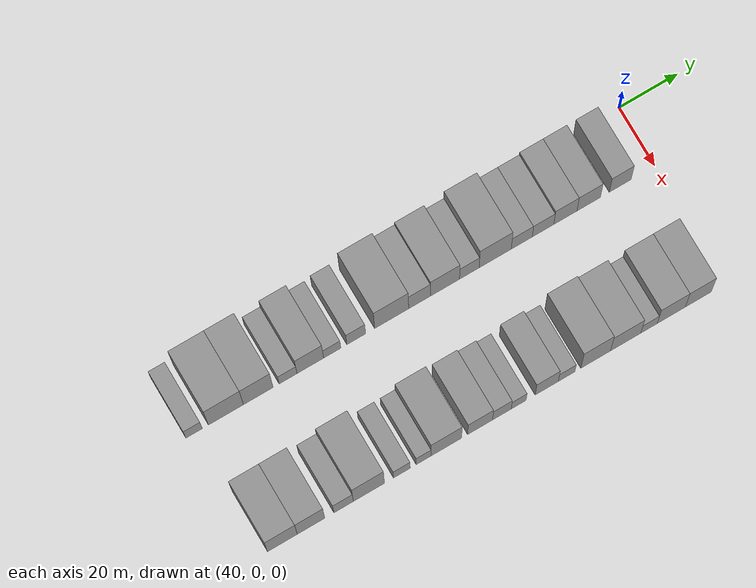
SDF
<sdf version="1.6">
 <world name="default">
  <model name="building_17">
   <static>1</static>
   <pose>50.0000 -153.6714 0 0.000000 0.000000 0.000000</pose>
   <link name="link">
    <pose>0 0 6.00 0 0 0</pose>
    <collision name="collision"><geometry><box><size>20.0000 5.4120 12.0000</size></box></geometry></collision>
    <visual name="visual">
     <cast_shadows>0</cast_shadows>
     <geometry><box><size>20.0000 5.4120 12.0000</size></box></geometry>
     <material>
      <script>
       <uri>model://grey_wall/materials/scripts</uri>
       <uri>model://grey_wall/materials/textures</uri>
       <name>vrc/grey_wall</name>
      </script>
     </material>
    </visual>
   </link>
  </model>
  <model name="building_18">
   <static>1</static>
   <pose>50.0000 -143.1797 0 0.000000 0.000000 0.000000</pose>
   <link name="link">
    <pose>0 0 12.00 0 0 0</pose>
    <collision name="collision"><geometry><box><size>20.0000 11.5714 24.0000</size></box></geometry></collision>
    <visual name="visual">
     <cast_shadows>0</cast_shadows>
     <geometry><box><size>20.0000 11.5714 24.0000</size></box></geometry>
     <material>
      <script>
       <uri>model://grey_wall/materials/scripts</uri>
       <uri>model://grey_wall/materials/textures</uri>
       <name>vrc/grey_wall</name>
      </script>
     </material>
    </visual>
   </link>
  </model>
  <model name="building_19">
   <static>1</static>
   <pose>50.0000 -132.5070 0 0.000000 0.000000 0.000000</pose>
   <link name="link">
    <pose>0 0 12.00 0 0 0</pose>
    <collision name="collision"><geometry><box><size>20.0000 9.7740 24.0000</size></box></geometry></collision>
    <visual name="visual">
     <cast_shadows>0</cast_shadows>
     <geometry><box><size>20.0000 9.7740 24.0000</size></box></geometry>
     <material>
      <script>
       <uri>model://grey_wall/materials/scripts</uri>
       <uri>model://grey_wall/materials/textures</uri>
       <name>vrc/grey_wall</name>
      </script>
     </material>
    </visual>
   </link>
  </model>
  <model name="building_20">
   <static>1</static>
   <pose>50.0000 -122.6663 0 0.000000 0.000000 0.000000</pose>
   <link name="link">
    <pose>0 0 6.00 0 0 0</pose>
    <collision name="collision"><geometry><box><size>20.0000 5.9075 12.0000</size></box></geometry></collision>
    <visual name="visual">
     <cast_shadows>0</cast_shadows>
     <geometry><box><size>20.0000 5.9075 12.0000</size></box></geometry>
     <material>
      <script>
       <uri>model://grey_wall/materials/scripts</uri>
       <uri>model://grey_wall/materials/textures</uri>
       <name>vrc/grey_wall</name>
      </script>
     </material>
    </visual>
   </link>
  </model>
  <model name="building_21">
   <static>1</static>
   <pose>50.0000 -115.2977 0 0.000000 0.000000 0.000000</pose>
   <link name="link">
    <pose>0 0 10.50 0 0 0</pose>
    <collision name="collision"><geometry><box><size>20.0000 8.8297 21.0000</size></box></geometry></collision>
    <visual name="visual">
     <cast_shadows>0</cast_shadows>
     <geometry><box><size>20.0000 8.8297 21.0000</size></box></geometry>
     <material>
      <script>
       <uri>model://grey_wall/materials/scripts</uri>
       <uri>model://grey_wall/materials/textures</uri>
       <name>vrc/grey_wall</name>
      </script>
     </material>
    </visual>
   </link>
  </model>
  <model name="building_22">
   <static>1</static>
   <pose>50.0000 -108.0368 0 0.000000 0.000000 0.000000</pose>
   <link name="link">
    <pose>0 0 6.00 0 0 0</pose>
    <collision name="collision"><geometry><box><size>20.0000 5.6920 12.0000</size></box></geometry></collision>
    <visual name="visual">
     <cast_shadows>0</cast_shadows>
     <geometry><box><size>20.0000 5.6920 12.0000</size></box></geometry>
     <material>
      <script>
       <uri>model://grey_wall/materials/scripts</uri>
       <uri>model://grey_wall/materials/textures</uri>
       <name>vrc/grey_wall</name>
      </script>
     </material>
    </visual>
   </link>
  </model>
  <model name="building_23">
   <static>1</static>
   <pose>50.0000 -100.0813 0 0.000000 0.000000 0.000000</pose>
   <link name="link">
    <pose>0 0 7.50 0 0 0</pose>
    <collision name="collision"><geometry><box><size>20.0000 6.2189 15.0000</size></box></geometry></collision>
    <visual name="visual">
     <cast_shadows>0</cast_shadows>
     <geometry><box><size>20.0000 6.2189 15.0000</size></box></geometry>
     <material>
      <script>
       <uri>model://grey_wall/materials/scripts</uri>
       <uri>model://grey_wall/materials/textures</uri>
       <name>vrc/grey_wall</name>
      </script>
     </material>
    </visual>
   </link>
  </model>
  <model name="building_24">
   <static>1</static>
   <pose>50.0000 -88.3045 0 0.000000 0.000000 0.000000</pose>
   <link name="link">
    <pose>0 0 12.00 0 0 0</pose>
    <collision name="collision"><geometry><box><size>20.0000 11.3347 24.0000</size></box></geometry></collision>
    <visual name="visual">
     <cast_shadows>0</cast_shadows>
     <geometry><box><size>20.0000 11.3347 24.0000</size></box></geometry>
     <material>
      <script>
       <uri>model://grey_wall/materials/scripts</uri>
       <uri>model://grey_wall/materials/textures</uri>
       <name>vrc/grey_wall</name>
      </script>
     </material>
    </visual>
   </link>
  </model>
  <model name="building_25">
   <static>1</static>
   <pose>50.0000 -79.0158 0 0.000000 0.000000 0.000000</pose>
   <link name="link">
    <pose>0 0 9.00 0 0 0</pose>
    <collision name="collision"><geometry><box><size>20.0000 7.2427 18.0000</size></box></geometry></collision>
    <visual name="visual">
     <cast_shadows>0</cast_shadows>
     <geometry><box><size>20.0000 7.2427 18.0000</size></box></geometry>
     <material>
      <script>
       <uri>model://grey_wall/materials/scripts</uri>
       <uri>model://grey_wall/materials/textures</uri>
       <name>vrc/grey_wall</name>
      </script>
     </material>
    </visual>
   </link>
  </model>
  <model name="building_26">
   <static>1</static>
   <pose>50.0000 -70.5292 0 0.000000 0.000000 0.000000</pose>
   <link name="link">
    <pose>0 0 10.50 0 0 0</pose>
    <collision name="collision"><geometry><box><size>20.0000 9.7304 21.0000</size></box></geometry></collision>
    <visual name="visual">
     <cast_shadows>0</cast_shadows>
     <geometry><box><size>20.0000 9.7304 21.0000</size></box></geometry>
     <material>
      <script>
       <uri>model://grey_wall/materials/scripts</uri>
       <uri>model://grey_wall/materials/textures</uri>
       <name>vrc/grey_wall</name>
      </script>
     </material>
    </visual>
   </link>
  </model>
  <model name="building_27">
   <static>1</static>
   <pose>50.0000 -62.3960 0 0.000000 0.000000 0.000000</pose>
   <link name="link">
    <pose>0 0 7.50 0 0 0</pose>
    <collision name="collision"><geometry><box><size>20.0000 6.5360 15.0000</size></box></geometry></collision>
    <visual name="visual">
     <cast_shadows>0</cast_shadows>
     <geometry><box><size>20.0000 6.5360 15.0000</size></box></geometry>
     <material>
      <script>
       <uri>model://grey_wall/materials/scripts</uri>
       <uri>model://grey_wall/materials/textures</uri>
       <name>vrc/grey_wall</name>
      </script>
     </material>
    </visual>
   </link>
  </model>
  <model name="building_28">
   <static>1</static>
   <pose>50.0000 -53.7417 0 0.000000 0.000000 0.000000</pose>
   <link name="link">
    <pose>0 0 12.00 0 0 0</pose>
    <collision name="collision"><geometry><box><size>20.0000 10.7727 24.0000</size></box></geometry></collision>
    <visual name="visual">
     <cast_shadows>0</cast_shadows>
     <geometry><box><size>20.0000 10.7727 24.0000</size></box></geometry>
     <material>
      <script>
       <uri>model://grey_wall/materials/scripts</uri>
       <uri>model://grey_wall/materials/textures</uri>
       <name>vrc/grey_wall</name>
      </script>
     </material>
    </visual>
   </link>
  </model>
  <model name="building_29">
   <static>1</static>
   <pose>50.0000 -44.8330 0 0.000000 0.000000 0.000000</pose>
   <link name="link">
    <pose>0 0 7.50 0 0 0</pose>
    <collision name="collision"><geometry><box><size>20.0000 7.0446 15.0000</size></box></geometry></collision>
    <visual name="visual">
     <cast_shadows>0</cast_shadows>
     <geometry><box><size>20.0000 7.0446 15.0000</size></box></geometry>
     <material>
      <script>
       <uri>model://grey_wall/materials/scripts</uri>
       <uri>model://grey_wall/materials/textures</uri>
       <name>vrc/grey_wall</name>
      </script>
     </material>
    </visual>
   </link>
  </model>
  <model name="building_30">
   <static>1</static>
   <pose>50.0000 -37.7096 0 0.000000 0.000000 0.000000</pose>
   <link name="link">
    <pose>0 0 7.50 0 0 0</pose>
    <collision name="collision"><geometry><box><size>20.0000 7.2022 15.0000</size></box></geometry></collision>
    <visual name="visual">
     <cast_shadows>0</cast_shadows>
     <geometry><box><size>20.0000 7.2022 15.0000</size></box></geometry>
     <material>
      <script>
       <uri>model://grey_wall/materials/scripts</uri>
       <uri>model://grey_wall/materials/textures</uri>
       <name>vrc/grey_wall</name>
      </script>
     </material>
    </visual>
   </link>
  </model>
  <model name="building_31">
   <static>1</static>
   <pose>50.0000 -30.2062 0 0.000000 0.000000 0.000000</pose>
   <link name="link">
    <pose>0 0 9.00 0 0 0</pose>
    <collision name="collision"><geometry><box><size>20.0000 7.8048 18.0000</size></box></geometry></collision>
    <visual name="visual">
     <cast_shadows>0</cast_shadows>
     <geometry><box><size>20.0000 7.8048 18.0000</size></box></geometry>
     <material>
      <script>
       <uri>model://grey_wall/materials/scripts</uri>
       <uri>model://grey_wall/materials/textures</uri>
       <name>vrc/grey_wall</name>
      </script>
     </material>
    </visual>
   </link>
  </model>
  <model name="building_32">
   <static>1</static>
   <pose>50.0000 -22.3476 0 0.000000 0.000000 0.000000</pose>
   <link name="link">
    <pose>0 0 9.00 0 0 0</pose>
    <collision name="collision"><geometry><box><size>20.0000 7.9123 18.0000</size></box></geometry></collision>
    <visual name="visual">
     <cast_shadows>0</cast_shadows>
     <geometry><box><size>20.0000 7.9123 18.0000</size></box></geometry>
     <material>
      <script>
       <uri>model://grey_wall/materials/scripts</uri>
       <uri>model://grey_wall/materials/textures</uri>
       <name>vrc/grey_wall</name>
      </script>
     </material>
    </visual>
   </link>
  </model>
  <model name="building_33">
   <static>1</static>
   <pose>50.0000 -11.7090 0 0.000000 0.000000 0.000000</pose>
   <link name="link">
    <pose>0 0 9.00 0 0 0</pose>
    <collision name="collision"><geometry><box><size>20.0000 7.3649 18.0000</size></box></geometry></collision>
    <visual name="visual">
     <cast_shadows>0</cast_shadows>
     <geometry><box><size>20.0000 7.3649 18.0000</size></box></geometry>
     <material>
      <script>
       <uri>model://grey_wall/materials/scripts</uri>
       <uri>model://grey_wall/materials/textures</uri>
       <name>vrc/grey_wall</name>
      </script>
     </material>
    </visual>
   </link>
  </model>
  <model name="building_87">
   <static>1</static>
   <pose>90.0000 -147.7793 0 0.000000 0.000000 0.000000</pose>
   <link name="link">
    <pose>0 0 10.50 0 0 0</pose>
    <collision name="collision"><geometry><box><size>20.0000 9.7521 21.0000</size></box></geometry></collision>
    <visual name="visual">
     <cast_shadows>0</cast_shadows>
     <geometry><box><size>20.0000 9.7521 21.0000</size></box></geometry>
     <material>
      <script>
       <uri>model://grey_wall/materials/scripts</uri>
       <uri>model://grey_wall/materials/textures</uri>
       <name>vrc/grey_wall</name>
      </script>
     </material>
    </visual>
   </link>
  </model>
  <model name="building_88">
   <static>1</static>
   <pose>90.0000 -138.3805 0 0.000000 0.000000 0.000000</pose>
   <link name="link">
    <pose>0 0 10.50 0 0 0</pose>
    <collision name="collision"><geometry><box><size>20.0000 9.0456 21.0000</size></box></geometry></collision>
    <visual name="visual">
     <cast_shadows>0</cast_shadows>
     <geometry><box><size>20.0000 9.0456 21.0000</size></box></geometry>
     <material>
      <script>
       <uri>model://grey_wall/materials/scripts</uri>
       <uri>model://grey_wall/materials/textures</uri>
       <name>vrc/grey_wall</name>
      </script>
     </material>
    </visual>
   </link>
  </model>
  <model name="building_89">
   <static>1</static>
   <pose>90.0000 -127.6646 0 0.000000 0.000000 0.000000</pose>
   <link name="link">
    <pose>0 0 7.50 0 0 0</pose>
    <collision name="collision"><geometry><box><size>20.0000 6.3862 15.0000</size></box></geometry></collision>
    <visual name="visual">
     <cast_shadows>0</cast_shadows>
     <geometry><box><size>20.0000 6.3862 15.0000</size></box></geometry>
     <material>
      <script>
       <uri>model://grey_wall/materials/scripts</uri>
       <uri>model://grey_wall/materials/textures</uri>
       <name>vrc/grey_wall</name>
      </script>
     </material>
    </visual>
   </link>
  </model>
  <model name="building_90">
   <static>1</static>
   <pose>90.0000 -119.3427 0 0.000000 0.000000 0.000000</pose>
   <link name="link">
    <pose>0 0 12.00 0 0 0</pose>
    <collision name="collision"><geometry><box><size>20.0000 10.2575 24.0000</size></box></geometry></collision>
    <visual name="visual">
     <cast_shadows>0</cast_shadows>
     <geometry><box><size>20.0000 10.2575 24.0000</size></box></geometry>
     <material>
      <script>
       <uri>model://grey_wall/materials/scripts</uri>
       <uri>model://grey_wall/materials/textures</uri>
       <name>vrc/grey_wall</name>
      </script>
     </material>
    </visual>
   </link>
  </model>
  <model name="building_91">
   <static>1</static>
   <pose>90.0000 -108.4573 0 0.000000 0.000000 0.000000</pose>
   <link name="link">
    <pose>0 0 6.00 0 0 0</pose>
    <collision name="collision"><geometry><box><size>20.0000 5.5132 12.0000</size></box></geometry></collision>
    <visual name="visual">
     <cast_shadows>0</cast_shadows>
     <geometry><box><size>20.0000 5.5132 12.0000</size></box></geometry>
     <material>
      <script>
       <uri>model://grey_wall/materials/scripts</uri>
       <uri>model://grey_wall/materials/textures</uri>
       <name>vrc/grey_wall</name>
      </script>
     </material>
    </visual>
   </link>
  </model>
  <model name="building_92">
   <static>1</static>
   <pose>90.0000 -101.2520 0 0.000000 0.000000 0.000000</pose>
   <link name="link">
    <pose>0 0 6.00 0 0 0</pose>
    <collision name="collision"><geometry><box><size>20.0000 4.8973 12.0000</size></box></geometry></collision>
    <visual name="visual">
     <cast_shadows>0</cast_shadows>
     <geometry><box><size>20.0000 4.8973 12.0000</size></box></geometry>
     <material>
      <script>
       <uri>model://grey_wall/materials/scripts</uri>
       <uri>model://grey_wall/materials/textures</uri>
       <name>vrc/grey_wall</name>
      </script>
     </material>
    </visual>
   </link>
  </model>
  <model name="building_93">
   <static>1</static>
   <pose>90.0000 -93.7492 0 0.000000 0.000000 0.000000</pose>
   <link name="link">
    <pose>0 0 10.50 0 0 0</pose>
    <collision name="collision"><geometry><box><size>20.0000 10.1083 21.0000</size></box></geometry></collision>
    <visual name="visual">
     <cast_shadows>0</cast_shadows>
     <geometry><box><size>20.0000 10.1083 21.0000</size></box></geometry>
     <material>
      <script>
       <uri>model://grey_wall/materials/scripts</uri>
       <uri>model://grey_wall/materials/textures</uri>
       <name>vrc/grey_wall</name>
      </script>
     </material>
    </visual>
   </link>
  </model>
  <model name="building_94">
   <static>1</static>
   <pose>90.0000 -82.5544 0 0.000000 0.000000 0.000000</pose>
   <link name="link">
    <pose>0 0 9.00 0 0 0</pose>
    <collision name="collision"><geometry><box><size>20.0000 8.2814 18.0000</size></box></geometry></collision>
    <visual name="visual">
     <cast_shadows>0</cast_shadows>
     <geometry><box><size>20.0000 8.2814 18.0000</size></box></geometry>
     <material>
      <script>
       <uri>model://grey_wall/materials/scripts</uri>
       <uri>model://grey_wall/materials/textures</uri>
       <name>vrc/grey_wall</name>
      </script>
     </material>
    </visual>
   </link>
  </model>
  <model name="building_95">
   <static>1</static>
   <pose>90.0000 -75.3129 0 0.000000 0.000000 0.000000</pose>
   <link name="link">
    <pose>0 0 7.50 0 0 0</pose>
    <collision name="collision"><geometry><box><size>20.0000 6.2016 15.0000</size></box></geometry></collision>
    <visual name="visual">
     <cast_shadows>0</cast_shadows>
     <geometry><box><size>20.0000 6.2016 15.0000</size></box></geometry>
     <material>
      <script>
       <uri>model://grey_wall/materials/scripts</uri>
       <uri>model://grey_wall/materials/textures</uri>
       <name>vrc/grey_wall</name>
      </script>
     </material>
    </visual>
   </link>
  </model>
  <model name="building_96">
   <static>1</static>
   <pose>90.0000 -69.7349 0 0.000000 0.000000 0.000000</pose>
   <link name="link">
    <pose>0 0 6.00 0 0 0</pose>
    <collision name="collision"><geometry><box><size>20.0000 4.9543 12.0000</size></box></geometry></collision>
    <visual name="visual">
     <cast_shadows>0</cast_shadows>
     <geometry><box><size>20.0000 4.9543 12.0000</size></box></geometry>
     <material>
      <script>
       <uri>model://grey_wall/materials/scripts</uri>
       <uri>model://grey_wall/materials/textures</uri>
       <name>vrc/grey_wall</name>
      </script>
     </material>
    </visual>
   </link>
  </model>
  <model name="building_97">
   <static>1</static>
   <pose>90.0000 -60.4065 0 0.000000 0.000000 0.000000</pose>
   <link name="link">
    <pose>0 0 9.00 0 0 0</pose>
    <collision name="collision"><geometry><box><size>20.0000 7.7025 18.0000</size></box></geometry></collision>
    <visual name="visual">
     <cast_shadows>0</cast_shadows>
     <geometry><box><size>20.0000 7.7025 18.0000</size></box></geometry>
     <material>
      <script>
       <uri>model://grey_wall/materials/scripts</uri>
       <uri>model://grey_wall/materials/textures</uri>
       <name>vrc/grey_wall</name>
      </script>
     </material>
    </visual>
   </link>
  </model>
  <model name="building_98">
   <static>1</static>
   <pose>90.0000 -53.7963 0 0.000000 0.000000 0.000000</pose>
   <link name="link">
    <pose>0 0 6.00 0 0 0</pose>
    <collision name="collision"><geometry><box><size>20.0000 5.5179 12.0000</size></box></geometry></collision>
    <visual name="visual">
     <cast_shadows>0</cast_shadows>
     <geometry><box><size>20.0000 5.5179 12.0000</size></box></geometry>
     <material>
      <script>
       <uri>model://grey_wall/materials/scripts</uri>
       <uri>model://grey_wall/materials/textures</uri>
       <name>vrc/grey_wall</name>
      </script>
     </material>
    </visual>
   </link>
  </model>
  <model name="building_99">
   <static>1</static>
   <pose>90.0000 -44.0918 0 0.000000 0.000000 0.000000</pose>
   <link name="link">
    <pose>0 0 12.00 0 0 0</pose>
    <collision name="collision"><geometry><box><size>20.0000 9.8911 24.0000</size></box></geometry></collision>
    <visual name="visual">
     <cast_shadows>0</cast_shadows>
     <geometry><box><size>20.0000 9.8911 24.0000</size></box></geometry>
     <material>
      <script>
       <uri>model://grey_wall/materials/scripts</uri>
       <uri>model://grey_wall/materials/textures</uri>
       <name>vrc/grey_wall</name>
      </script>
     </material>
    </visual>
   </link>
  </model>
  <model name="building_100">
   <static>1</static>
   <pose>90.0000 -34.0709 0 0.000000 0.000000 0.000000</pose>
   <link name="link">
    <pose>0 0 10.50 0 0 0</pose>
    <collision name="collision"><geometry><box><size>20.0000 10.1506 21.0000</size></box></geometry></collision>
    <visual name="visual">
     <cast_shadows>0</cast_shadows>
     <geometry><box><size>20.0000 10.1506 21.0000</size></box></geometry>
     <material>
      <script>
       <uri>model://grey_wall/materials/scripts</uri>
       <uri>model://grey_wall/materials/textures</uri>
       <name>vrc/grey_wall</name>
      </script>
     </material>
    </visual>
   </link>
  </model>
  <model name="building_101">
   <static>1</static>
   <pose>90.0000 -26.2525 0 0.000000 0.000000 0.000000</pose>
   <link name="link">
    <pose>0 0 6.00 0 0 0</pose>
    <collision name="collision"><geometry><box><size>20.0000 5.4862 12.0000</size></box></geometry></collision>
    <visual name="visual">
     <cast_shadows>0</cast_shadows>
     <geometry><box><size>20.0000 5.4862 12.0000</size></box></geometry>
     <material>
      <script>
       <uri>model://grey_wall/materials/scripts</uri>
       <uri>model://grey_wall/materials/textures</uri>
       <name>vrc/grey_wall</name>
      </script>
     </material>
    </visual>
   </link>
  </model>
  <model name="building_102">
   <static>1</static>
   <pose>90.0000 -18.7972 0 0.000000 0.000000 0.000000</pose>
   <link name="link">
    <pose>0 0 10.50 0 0 0</pose>
    <collision name="collision"><geometry><box><size>20.0000 9.4246 21.0000</size></box></geometry></collision>
    <visual name="visual">
     <cast_shadows>0</cast_shadows>
     <geometry><box><size>20.0000 9.4246 21.0000</size></box></geometry>
     <material>
      <script>
       <uri>model://grey_wall/materials/scripts</uri>
       <uri>model://grey_wall/materials/textures</uri>
       <name>vrc/grey_wall</name>
      </script>
     </material>
    </visual>
   </link>
  </model>
  <model name="building_103">
   <static>1</static>
   <pose>90.0000 -9.7131 0 0.000000 0.000000 0.000000</pose>
   <link name="link">
    <pose>0 0 10.50 0 0 0</pose>
    <collision name="collision"><geometry><box><size>20.0000 8.7435 21.0000</size></box></geometry></collision>
    <visual name="visual">
     <cast_shadows>0</cast_shadows>
     <geometry><box><size>20.0000 8.7435 21.0000</size></box></geometry>
     <material>
      <script>
       <uri>model://grey_wall/materials/scripts</uri>
       <uri>model://grey_wall/materials/textures</uri>
       <name>vrc/grey_wall</name>
      </script>
     </material>
    </visual>
   </link>
  </model>
 </world>
</sdf>
